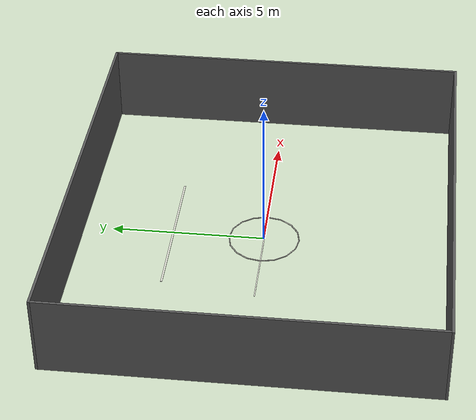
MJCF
<mujoco model="arena_football_field">
  <asset>
    <material name="field_line" rgba="0.88 0.88 0.84 1" />
    <material name="arena_backdrop" rgba="0.35 0.35 0.35 1" />
  </asset>

  <worldbody>
    <body name="football_field_visuals">
      <geom name="mid_line" type="box" pos="0.000 0.000 0.004" size="2.900 0.018 0.004" material="field_line" contype="0" conaffinity="0" />
      <geom name="goal_line" type="box" pos="0.050 3.000 0.005" size="2.550 0.030 0.005" material="field_line" contype="0" conaffinity="0" />
      <geom name="center_circle_00" type="capsule" fromto="1.150 0.000 0.006 1.062 0.440 0.006" size="0.018" material="field_line" contype="0" conaffinity="0" />
      <geom name="center_circle_01" type="capsule" fromto="1.062 0.440 0.006 0.813 0.813 0.006" size="0.018" material="field_line" contype="0" conaffinity="0" />
      <geom name="center_circle_02" type="capsule" fromto="0.813 0.813 0.006 0.440 1.062 0.006" size="0.018" material="field_line" contype="0" conaffinity="0" />
      <geom name="center_circle_03" type="capsule" fromto="0.440 1.062 0.006 0.000 1.150 0.006" size="0.018" material="field_line" contype="0" conaffinity="0" />
      <geom name="center_circle_04" type="capsule" fromto="0.000 1.150 0.006 -0.440 1.062 0.006" size="0.018" material="field_line" contype="0" conaffinity="0" />
      <geom name="center_circle_05" type="capsule" fromto="-0.440 1.062 0.006 -0.813 0.813 0.006" size="0.018" material="field_line" contype="0" conaffinity="0" />
      <geom name="center_circle_06" type="capsule" fromto="-0.813 0.813 0.006 -1.062 0.440 0.006" size="0.018" material="field_line" contype="0" conaffinity="0" />
      <geom name="center_circle_07" type="capsule" fromto="-1.062 0.440 0.006 -1.150 0.000 0.006" size="0.018" material="field_line" contype="0" conaffinity="0" />
      <geom name="center_circle_08" type="capsule" fromto="-1.150 0.000 0.006 -1.062 -0.440 0.006" size="0.018" material="field_line" contype="0" conaffinity="0" />
      <geom name="center_circle_09" type="capsule" fromto="-1.062 -0.440 0.006 -0.813 -0.813 0.006" size="0.018" material="field_line" contype="0" conaffinity="0" />
      <geom name="center_circle_10" type="capsule" fromto="-0.813 -0.813 0.006 -0.440 -1.062 0.006" size="0.018" material="field_line" contype="0" conaffinity="0" />
      <geom name="center_circle_11" type="capsule" fromto="-0.440 -1.062 0.006 0.000 -1.150 0.006" size="0.018" material="field_line" contype="0" conaffinity="0" />
      <geom name="center_circle_12" type="capsule" fromto="0.000 -1.150 0.006 0.440 -1.062 0.006" size="0.018" material="field_line" contype="0" conaffinity="0" />
      <geom name="center_circle_13" type="capsule" fromto="0.440 -1.062 0.006 0.813 -0.813 0.006" size="0.018" material="field_line" contype="0" conaffinity="0" />
      <geom name="center_circle_14" type="capsule" fromto="0.813 -0.813 0.006 1.062 -0.440 0.006" size="0.018" material="field_line" contype="0" conaffinity="0" />
      <geom name="center_circle_15" type="capsule" fromto="1.062 -0.440 0.006 1.150 0.000 0.006" size="0.018" material="field_line" contype="0" conaffinity="0" />

      <geom name="backdrop_front" type="box" pos="0.000 6.000 1.300" size="6.840 0.040 1.300" material="arena_backdrop" contype="0" conaffinity="0" />
      <geom name="backdrop_back" type="box" pos="0.000 -6.000 1.300" size="6.840 0.040 1.300" material="arena_backdrop" contype="0" conaffinity="0" />
      <geom name="backdrop_left" type="box" pos="-6.800 0.000 1.300" size="0.040 6.000 1.300" material="arena_backdrop" contype="0" conaffinity="0" />
      <geom name="backdrop_right" type="box" pos="6.800 0.000 1.300" size="0.040 6.000 1.300" material="arena_backdrop" contype="0" conaffinity="0" />
    </body>
  </worldbody>
</mujoco>
